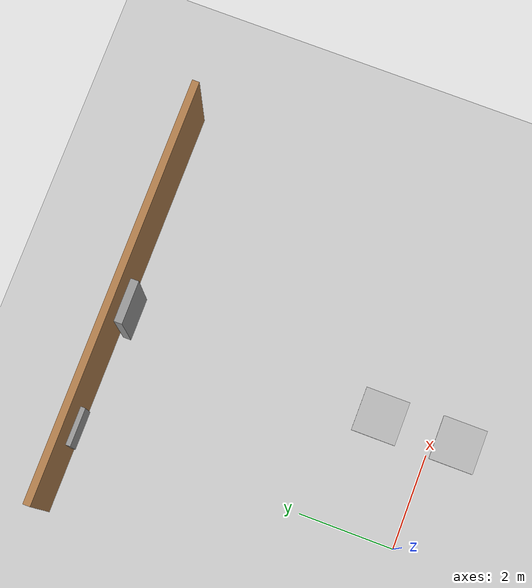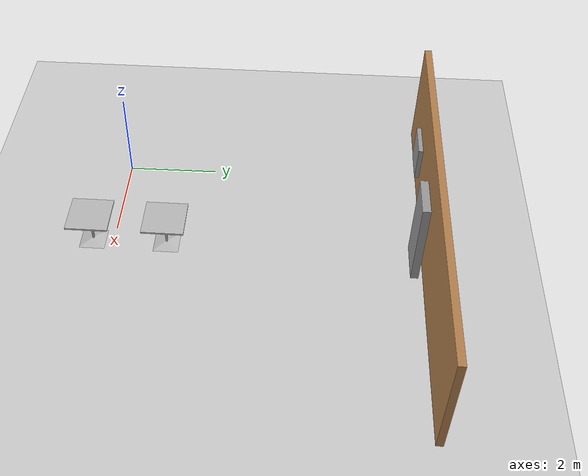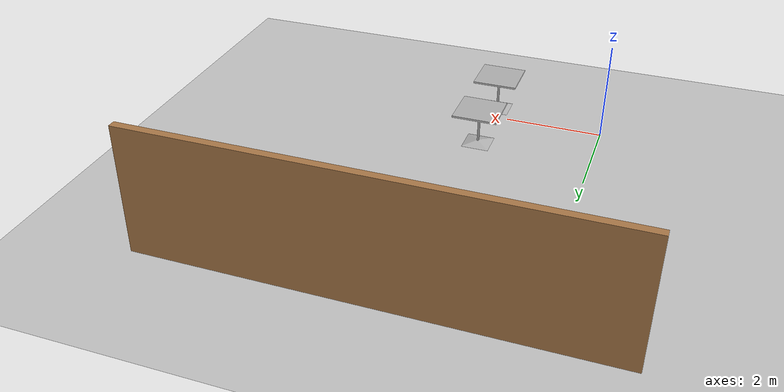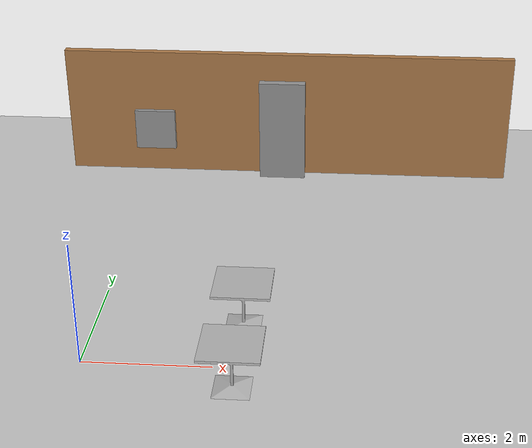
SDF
<sdf version="1.6">
 <world name="default">
  <light name="sun" type="directional">
   <pose>0 0 15 0 -0 0</pose>
   <diffuse>0.8 0.8 0.8 1</diffuse>
   <specular>0.2 0.2 0.2 1</specular>
   <attenuation>
    <range>1000</range>
    <constant>0.9</constant>
    <linear>0.01</linear>
    <quadratic>0.001</quadratic>
   </attenuation>
   <direction>-0.5 0.1 -0.9</direction>
  </light>
  <model name="ground_plane">
   <static>1</static>
   <link name="link">
    <collision name="collision">
     <geometry><plane><normal>0 0 1</normal><size>100 100</size></plane></geometry>
     <surface><friction><ode><mu>100</mu><mu2>50</mu2></ode></friction></surface>
    </collision>
    <visual name="visual">
     <transparency>1</transparency>
     <cast_shadows>0</cast_shadows>
     <geometry><plane><normal>0 0 1</normal><size>100 100</size></plane></geometry>
     <material>
      <script><uri>file://media/materials/scripts/gazebo.material</uri><name>Gazebo/Grey</name></script>
     </material>
    </visual>
   </link>
  </model>
  <gravity>0 0 -9.8</gravity>
  <magnetic_field>6e-06 2.3e-05 -4.2e-05</magnetic_field>
  <atmosphere type="adiabatic"/>
  <physics name="default_physics" default="0" type="ode">
   <max_step_size>0.001</max_step_size>
   <real_time_factor>1</real_time_factor>
   <real_time_update_rate>1000</real_time_update_rate>
  </physics>
  <scene><ambient>0.4 0.4 0.4 1</ambient><background>0.7 0.7 0.7 1</background><shadows>1</shadows></scene>
  <spherical_coordinates>
   <surface_model>EARTH_WGS84</surface_model>
   <latitude_deg>0</latitude_deg>
   <longitude_deg>0</longitude_deg>
   <elevation>0</elevation>
   <heading_deg>0</heading_deg>
  </spherical_coordinates>
  <model name="my_cafe_model">
   <pose>2.64 6.81 0 0 -0 0</pose>
   <link name="Door_0">
    <collision name="Door_0_Collision">
     <geometry><box><size>0.9 0.17 2</size></box></geometry>
     <pose>0 0 1 0 -0 0</pose>
    </collision>
    <visual name="Door_0_Visual">
     <pose>0 0 1 0 -0 0</pose>
     <geometry><box><size>0.9 0.17 2</size></box></geometry>
     <material>
      <script><uri>file://media/materials/scripts/gazebo.material</uri><name>Gazebo/Grey</name></script>
     </material>
    </visual>
    <pose>-0.08 -0.25 0 0 -0 0</pose>
   </link>
   <link name="Wall_0">
    <collision name="Wall_0_Collision">
     <geometry><box><size>8.75 0.15 2.5</size></box></geometry>
     <pose>0 0 1.25 0 -0 0</pose>
    </collision>
    <visual name="Wall_0_Visual">
     <pose>0 0 1.25 0 -0 0</pose>
     <geometry><box><size>8.75 0.15 2.5</size></box></geometry>
     <material>
      <script><uri>file://media/materials/scripts/gazebo.material</uri><name>Gazebo/Wood</name></script>
      <ambient>1 1 1 1</ambient>
     </material>
     <meta><layer>0</layer></meta>
    </visual>
   </link>
   <link name="Window_0">
    <collision name="Window_0_Collision">
     <geometry><box><size>0.8 0.17 0.8</size></box></geometry>
     <pose>0 0 0.4 0 -0 0</pose>
    </collision>
    <visual name="Window_0_Visual">
     <pose>0 0 0.4 0 -0 0</pose>
     <geometry><box><size>0.8 0.17 0.8</size></box></geometry>
     <material>
      <script><uri>file://media/materials/scripts/gazebo.material</uri><name>Gazebo/Grey</name></script>
     </material>
    </visual>
    <pose>-2.64 -0.09 0.5 0 -0 0</pose>
   </link>
   <static>1</static>
  </model>
  <model name="cafe_table">
   <static>1</static>
   <link name="link">
    <collision name="surface">
     <pose>0 0 0.755 0 -0 0</pose>
     <geometry><box><size>0.913 0.913 0.04</size></box></geometry>
    </collision>
    <collision name="column">
     <pose>0 0 0.37 0 -0 0</pose>
     <geometry><box><size>0.042 0.042 0.74</size></box></geometry>
    </collision>
    <collision name="base">
     <pose>0 0 0.02 0 -0 0</pose>
     <geometry><box><size>0.56 0.56 0.04</size></box></geometry>
    </collision>
    <visual name="visual">
     <geometry><mesh><uri>model://cafe_table/meshes/cafe_table.dae</uri></mesh></geometry>
    </visual>
   </link>
   <pose>2.34296 1.16544 0 0 -0 0</pose>
  </model>
  <model name="cafe_table_0">
   <static>1</static>
   <link name="link">
    <collision name="surface">
     <pose>0 0 0.755 0 -0 0</pose>
     <geometry><box><size>0.913 0.913 0.04</size></box></geometry>
    </collision>
    <collision name="column">
     <pose>0 0 0.37 0 -0 0</pose>
     <geometry><box><size>0.042 0.042 0.74</size></box></geometry>
    </collision>
    <collision name="base">
     <pose>0 0 0.02 0 -0 0</pose>
     <geometry><box><size>0.56 0.56 0.04</size></box></geometry>
    </collision>
    <visual name="visual">
     <geometry><mesh><uri>model://cafe_table/meshes/cafe_table.dae</uri></mesh></geometry>
    </visual>
   </link>
   <pose>2.34557 -0.464931 0 0 -0 0</pose>
  </model>
 </world>
</sdf>
